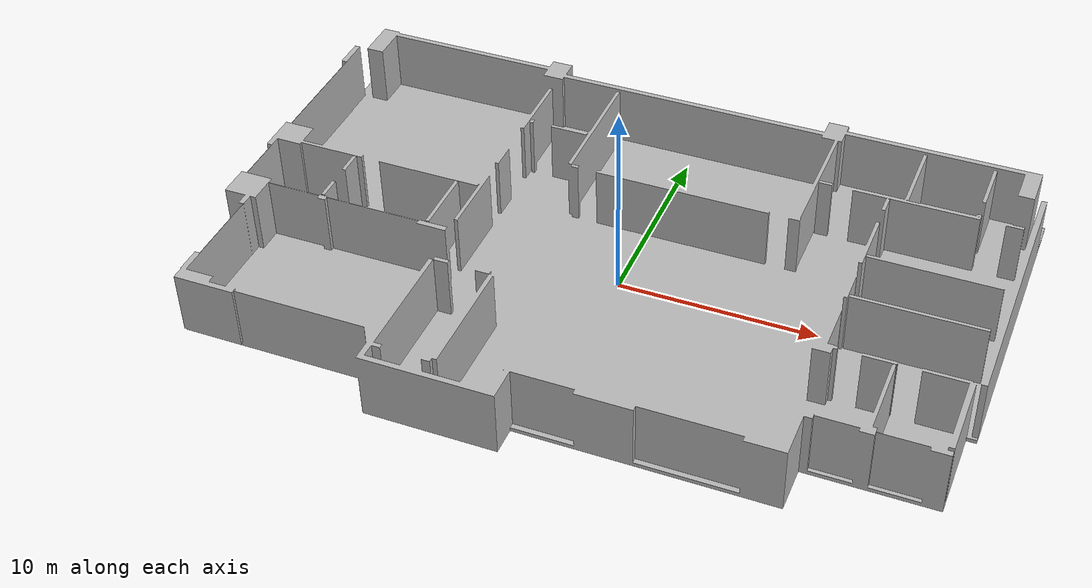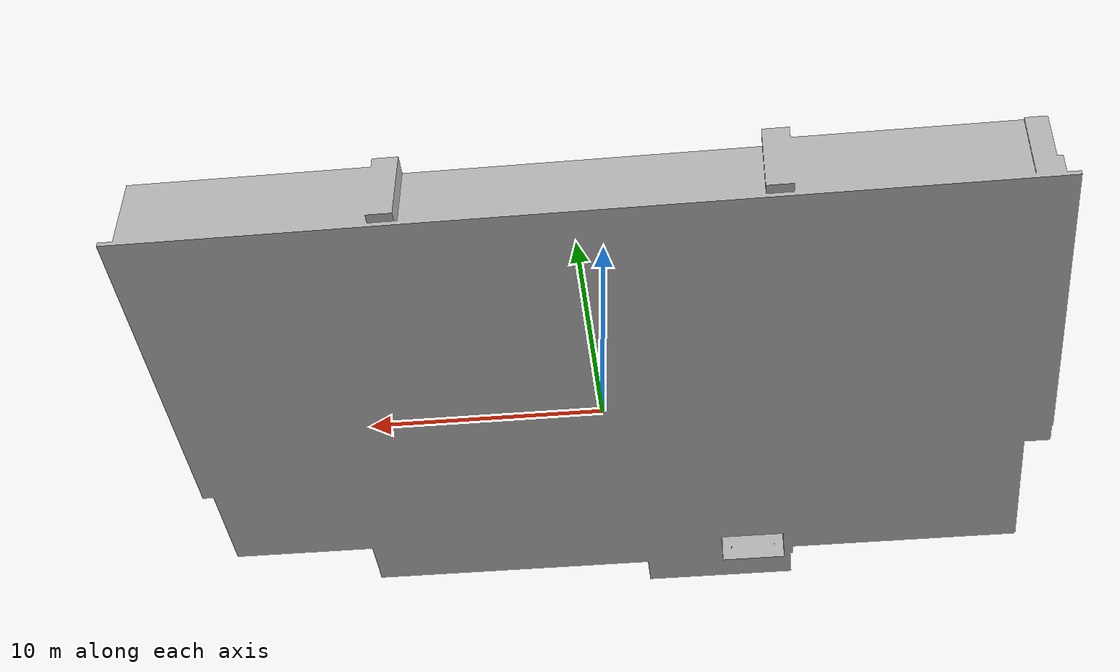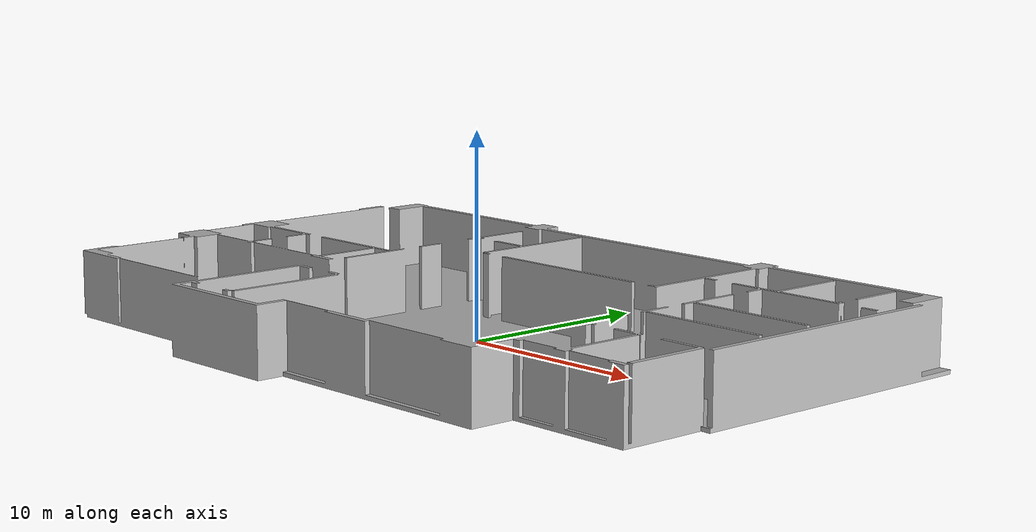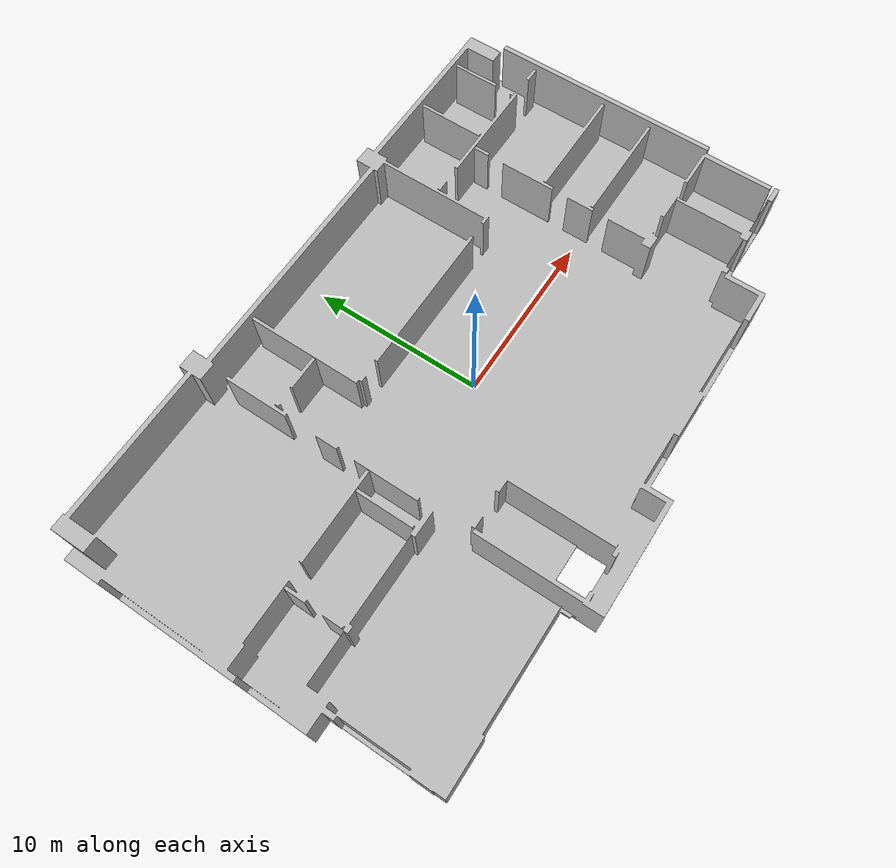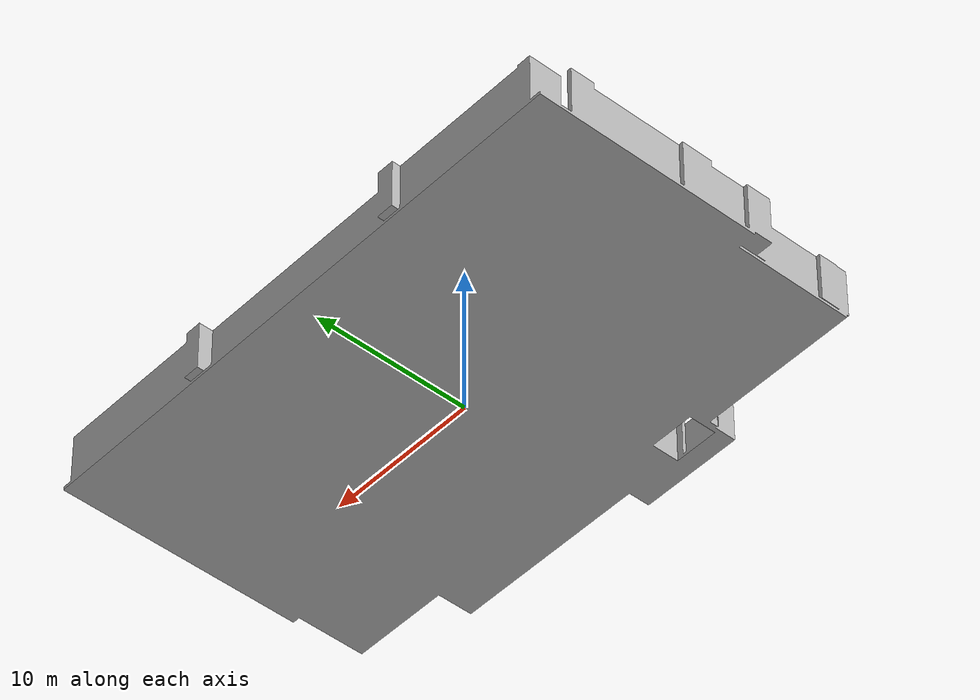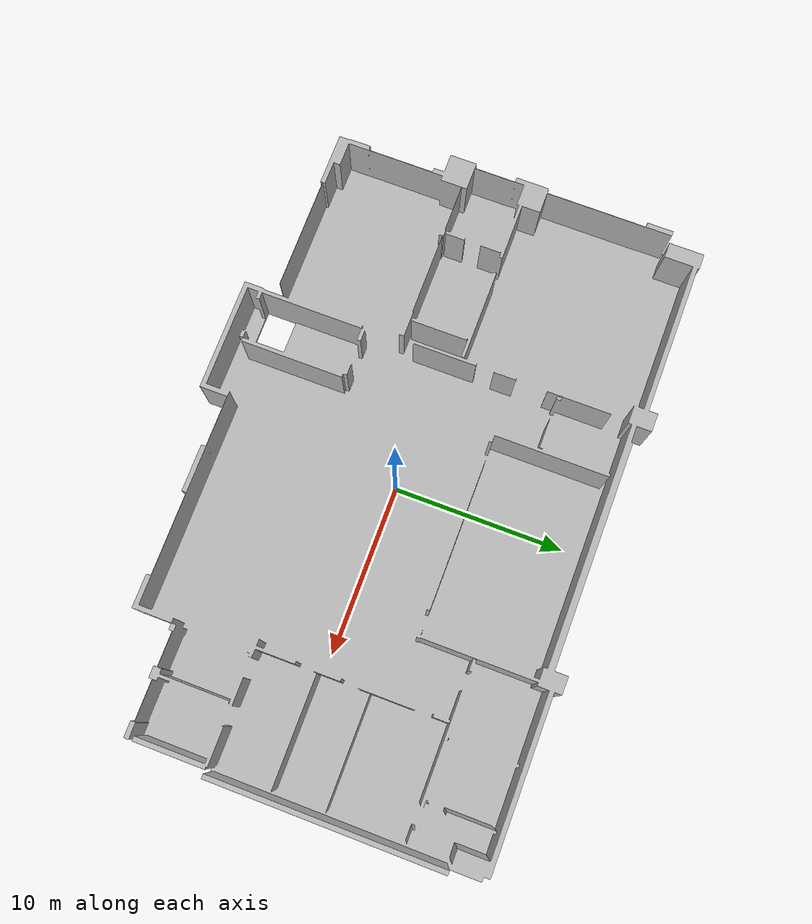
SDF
<?xml version="1.0" ?>
<sdf version="1.9">

  <model name="villa_B1">

    <static>true</static>

    <link name="villa_B1_link">

      <visual name="villa_B1_visual">
        <geometry>
          <mesh>
            <uri>meshes/villa_B1.obj</uri>
          </mesh>
        </geometry>
      </visual>

      <collision name="villa_B1_collision">
        <geometry>
          <mesh>
            <uri>meshes/villa_B1.obj</uri>
          </mesh>
        </geometry>
      </collision>

    </link>

  </model>

</sdf>
